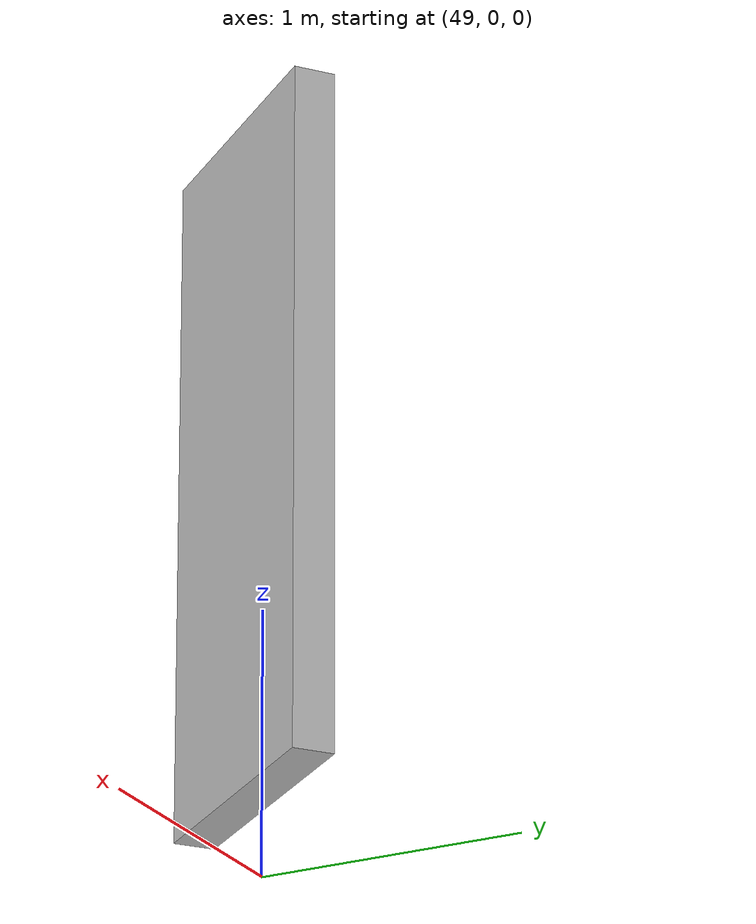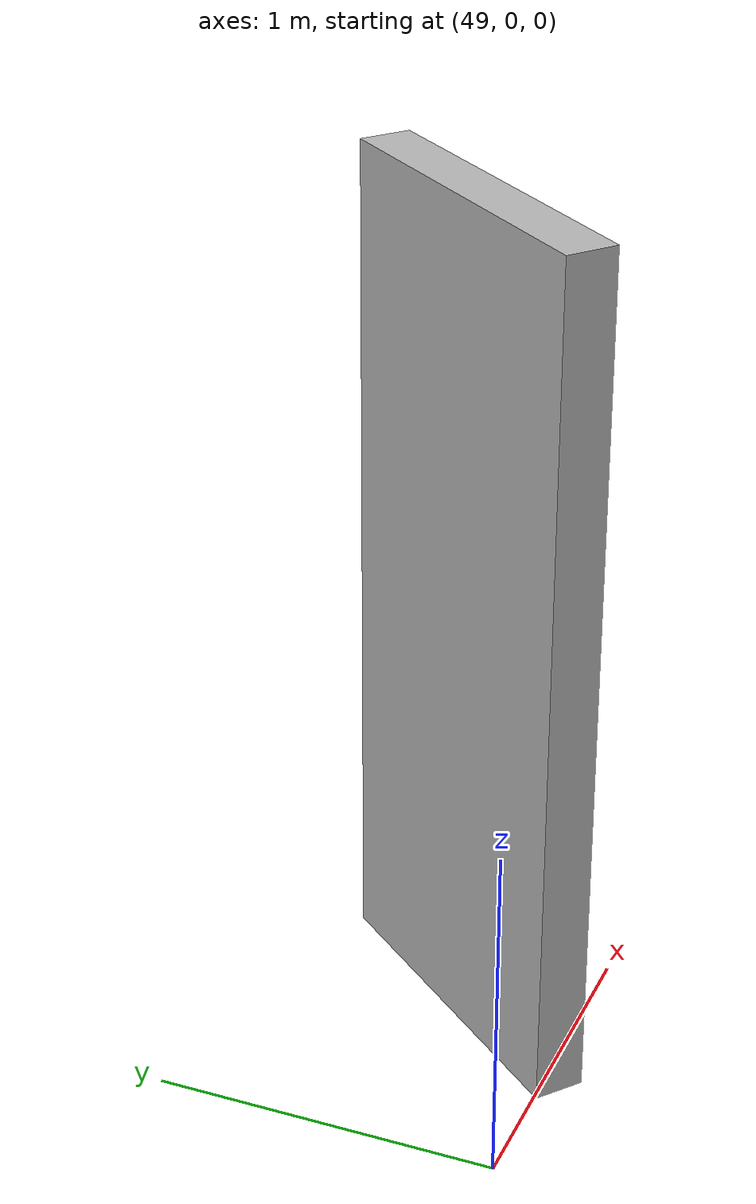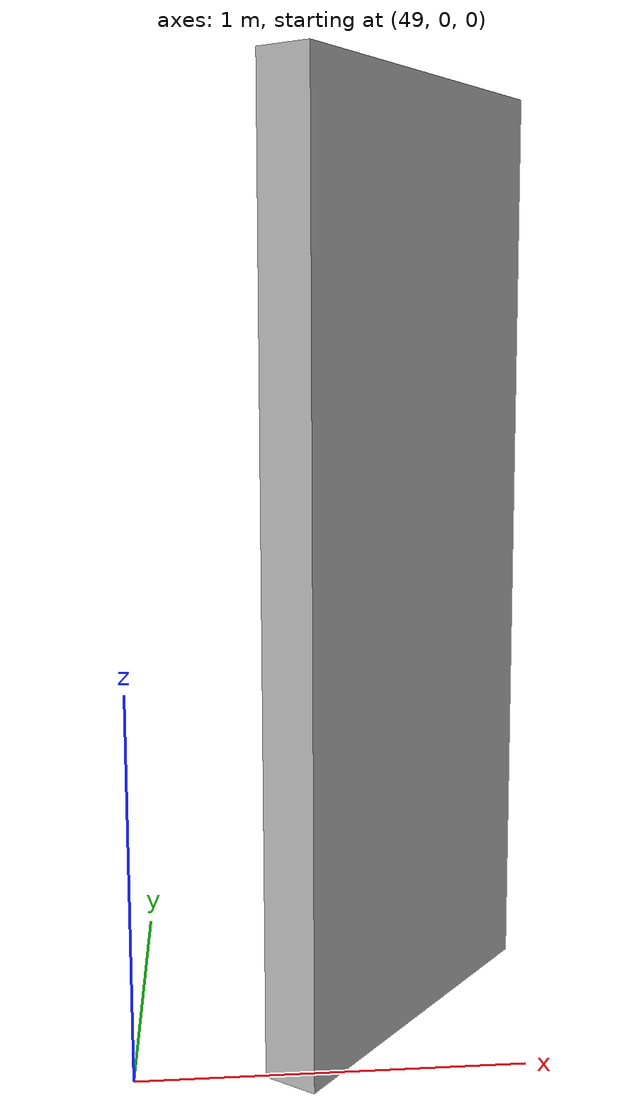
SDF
<?xml version="1.0" ?>
<sdf version="1.6">
  <model name="sps_0638">
    <pose frame="">0 0 0 0 -0 0</pose>
    <static>0</static>
    <self_collide>0</self_collide>
    <allow_auto_disable>0</allow_auto_disable>
    <link name="Wall9990">
      <kinematic>0</kinematic>
      <gravity>1</gravity>
      <self_collide>0</self_collide>
      <collision name="collision">
        <geometry>
          <box>
            <size>1.01907 0.15 2.5</size>
          </box>
        </geometry>
        <pose frame="">0 0 0 0 -0 0</pose>
      </collision>
      <visual name="visual">
        <geometry>
          <box>
            <size>1.01907 0.15 2.5</size>
          </box>
        </geometry>
        <pose frame="">0 0 0 0 -0 0</pose>
        <cast_shadows>1</cast_shadows>
        <transparency>0.0</transparency>
      </visual>
      <pose frame="">49.7083 0.34349 1.25 0 0 -2.24829</pose>
    </link>
  </model>
</sdf>
